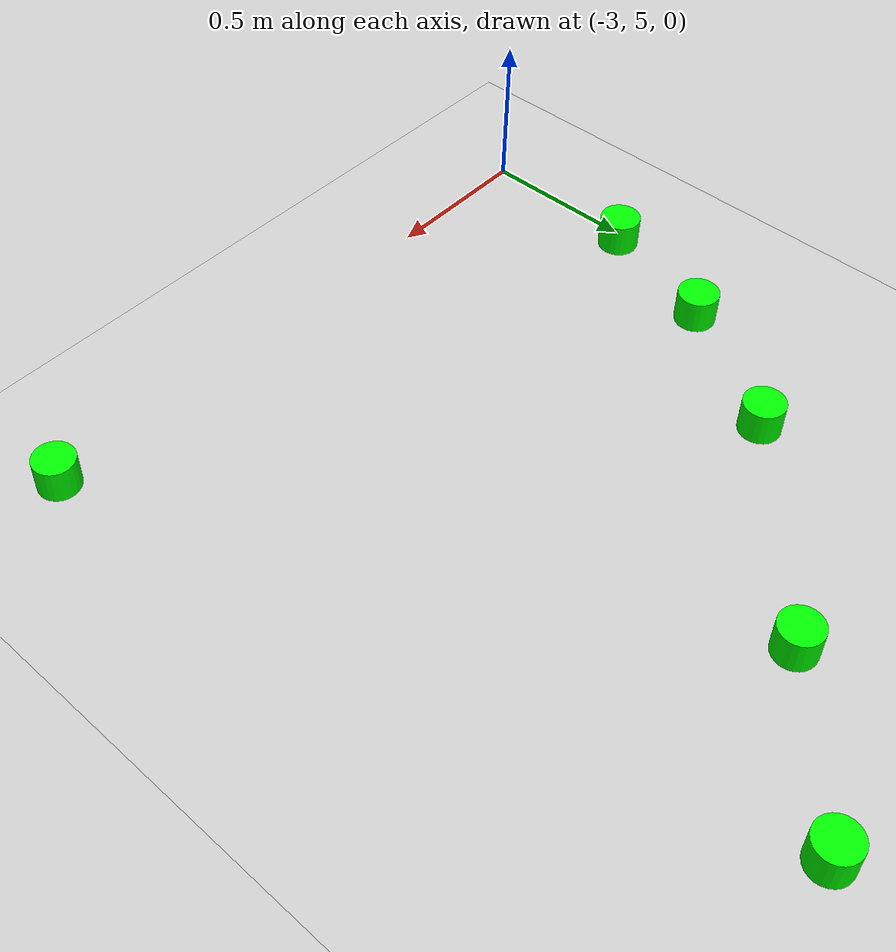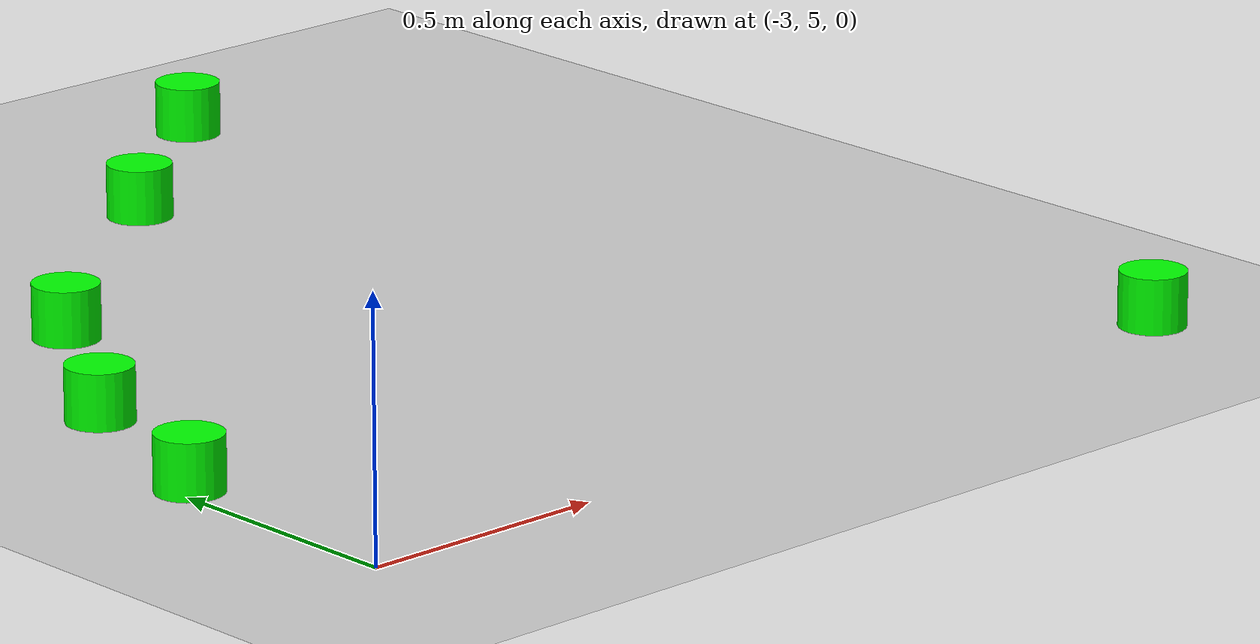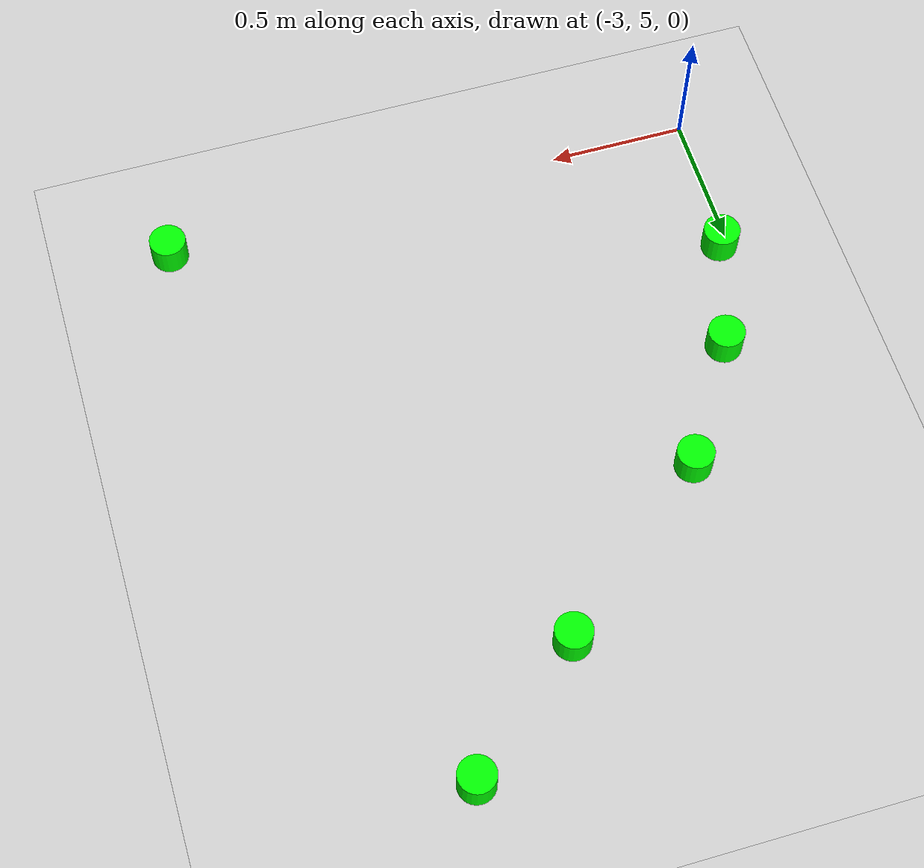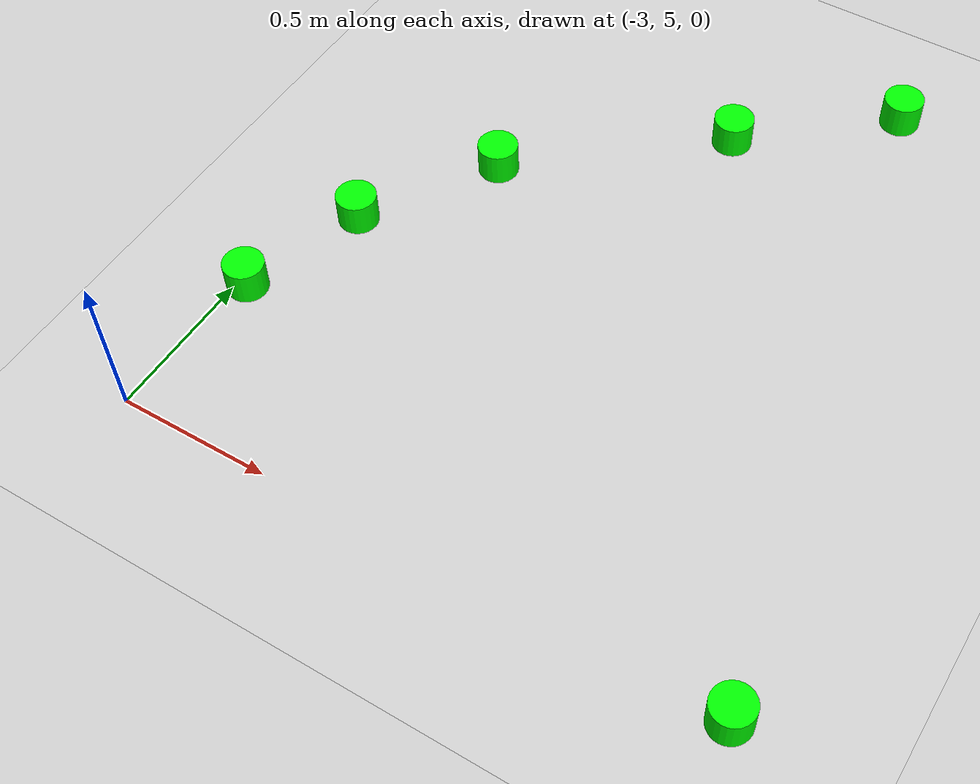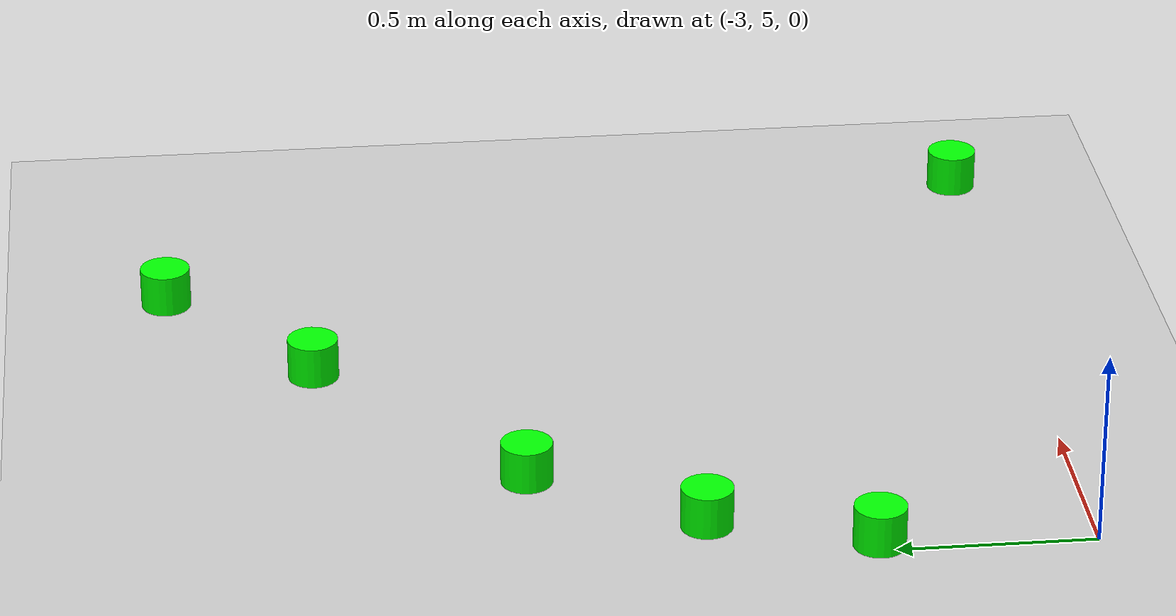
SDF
<sdf version="1.7">
 <world name="default">
  <model name="ground_plane">
   <static>1</static>
   <link name="link">
    <collision name="collision">
     <geometry><plane><normal>0 0 1</normal><size>100 100</size></plane></geometry>
     <surface>
      <contact><collide_bitmask>65535</collide_bitmask></contact>
      <friction><ode><mu>100</mu><mu2>50</mu2></ode></friction>
     </surface>
    </collision>
    <visual name="visual">
     <cast_shadows>0</cast_shadows>
     <geometry><plane><normal>0 0 1</normal><size>100 100</size></plane></geometry>
     <material>
      <script><uri>file://media/materials/scripts/gazebo.material</uri><name>Gazebo/Grey</name></script>
     </material>
    </visual>
   </link>
  </model>
  <model name="latinha_verde_clone_4">
   <link name="link">
    <inertial>
     <mass>1</mass>
     <inertia><ixx>0.145833</ixx><ixy>0</ixy><ixz>0</ixz><iyy>0.145833</iyy><iyz>0</iyz><izz>0.125</izz></inertia>
    </inertial>
    <visual name="visual">
     <geometry><cylinder><radius>0.066</radius><length>0.114</length></cylinder></geometry>
     <material>
      <script><name>Gazebo/Gray</name><uri>file://media/materials/scripts/gazebo.material</uri></script>
      <shader type="pixel"><normal_map>__default__</normal_map></shader>
      <ambient>0 1 0 1</ambient>
      <diffuse>0 1 0 1</diffuse>
      <specular>0.1 0.1 0.1 1</specular>
      <emissive>0 0 0 1</emissive>
     </material>
    </visual>
    <collision name="collision">
     <geometry><cylinder><radius>0.05</radius><length>0.1</length></cylinder></geometry>
     <surface>
      <friction>
       <ode><mu>1</mu><mu2>1</mu2><fdir1>0 0 0</fdir1><slip1>0</slip1><slip2>0</slip2></ode>
       <torsional>
        <coefficient>1</coefficient>
        <patch_radius>0</patch_radius>
        <surface_radius>0</surface_radius>
        <use_patch_radius>1</use_patch_radius>
        <ode><slip>0</slip></ode>
       </torsional>
      </friction>
      <bounce><restitution_coefficient>0</restitution_coefficient><threshold>1e+06</threshold></bounce>
      <contact>
       <collide_without_contact>0</collide_without_contact>
       <collide_without_contact_bitmask>1</collide_without_contact_bitmask>
       <collide_bitmask>1</collide_bitmask>
       <ode>
        <soft_cfm>0</soft_cfm>
        <soft_erp>0.2</soft_erp>
        <kp>1e+13</kp>
        <kd>1</kd>
        <max_vel>0.01</max_vel>
        <min_depth>0</min_depth>
       </ode>
       <bullet>
        <split_impulse>1</split_impulse>
        <split_impulse_penetration_threshold>-0.01</split_impulse_penetration_threshold>
        <soft_cfm>0</soft_cfm>
        <soft_erp>0.2</soft_erp>
        <kp>1e+13</kp>
        <kd>1</kd>
       </bullet>
      </contact>
     </surface>
    </collision>
   </link>
   <static>0</static>
   <pose>-1.02625 5.01775 0.049991 0 -0 0.000149</pose>
  </model>
  <model name="latinha_verde_clone_8_clone_2_clone_2_clone_16">
   <link name="link">
    <inertial>
     <mass>1</mass>
     <inertia><ixx>0.145833</ixx><ixy>0</ixy><ixz>0</ixz><iyy>0.145833</iyy><iyz>0</iyz><izz>0.125</izz></inertia>
    </inertial>
    <visual name="visual">
     <geometry><cylinder><radius>0.066</radius><length>0.114</length></cylinder></geometry>
     <material>
      <script><name>Gazebo/Gray</name><uri>file://media/materials/scripts/gazebo.material</uri></script>
      <shader type="pixel"><normal_map>__default__</normal_map></shader>
      <ambient>0 1 0 1</ambient>
      <diffuse>0 1 0 1</diffuse>
      <specular>0.1 0.1 0.1 1</specular>
      <emissive>0 0 0 1</emissive>
     </material>
    </visual>
    <collision name="collision">
     <geometry><cylinder><radius>0.05</radius><length>0.1</length></cylinder></geometry>
     <surface>
      <friction>
       <ode><mu>1</mu><mu2>1</mu2><fdir1>0 0 0</fdir1><slip1>0</slip1><slip2>0</slip2></ode>
       <torsional>
        <coefficient>1</coefficient>
        <patch_radius>0</patch_radius>
        <surface_radius>0</surface_radius>
        <use_patch_radius>1</use_patch_radius>
        <ode><slip>0</slip></ode>
       </torsional>
      </friction>
      <bounce><restitution_coefficient>0</restitution_coefficient><threshold>1e+06</threshold></bounce>
      <contact>
       <collide_without_contact>0</collide_without_contact>
       <collide_without_contact_bitmask>1</collide_without_contact_bitmask>
       <collide_bitmask>1</collide_bitmask>
       <ode>
        <soft_cfm>0</soft_cfm>
        <soft_erp>0.2</soft_erp>
        <kp>1e+13</kp>
        <kd>1</kd>
        <max_vel>0.01</max_vel>
        <min_depth>0</min_depth>
       </ode>
       <bullet>
        <split_impulse>1</split_impulse>
        <split_impulse_penetration_threshold>-0.01</split_impulse_penetration_threshold>
        <soft_cfm>0</soft_cfm>
        <soft_erp>0.2</soft_erp>
        <kp>1e+13</kp>
        <kd>1</kd>
       </bullet>
      </contact>
     </surface>
    </collision>
   </link>
   <static>0</static>
   <pose>-1.52834 7.23863 0.05 0 -0 0.000118</pose>
  </model>
  <model name="latinha_verde_clone_8_clone_2_clone_2_clone_17">
   <link name="link">
    <inertial>
     <mass>1</mass>
     <inertia><ixx>0.145833</ixx><ixy>0</ixy><ixz>0</ixz><iyy>0.145833</iyy><iyz>0</iyz><izz>0.125</izz></inertia>
    </inertial>
    <visual name="visual">
     <geometry><cylinder><radius>0.066</radius><length>0.114</length></cylinder></geometry>
     <material>
      <script><name>Gazebo/Gray</name><uri>file://media/materials/scripts/gazebo.material</uri></script>
      <shader type="pixel"><normal_map>__default__</normal_map></shader>
      <ambient>0 1 0 1</ambient>
      <diffuse>0 1 0 1</diffuse>
      <specular>0.1 0.1 0.1 1</specular>
      <emissive>0 0 0 1</emissive>
     </material>
    </visual>
    <collision name="collision">
     <geometry><cylinder><radius>0.05</radius><length>0.1</length></cylinder></geometry>
     <surface>
      <friction>
       <ode><mu>1</mu><mu2>1</mu2><fdir1>0 0 0</fdir1><slip1>0</slip1><slip2>0</slip2></ode>
       <torsional>
        <coefficient>1</coefficient>
        <patch_radius>0</patch_radius>
        <surface_radius>0</surface_radius>
        <use_patch_radius>1</use_patch_radius>
        <ode><slip>0</slip></ode>
       </torsional>
      </friction>
      <bounce><restitution_coefficient>0</restitution_coefficient><threshold>1e+06</threshold></bounce>
      <contact>
       <collide_without_contact>0</collide_without_contact>
       <collide_without_contact_bitmask>1</collide_without_contact_bitmask>
       <collide_bitmask>1</collide_bitmask>
       <ode>
        <soft_cfm>0</soft_cfm>
        <soft_erp>0.2</soft_erp>
        <kp>1e+13</kp>
        <kd>1</kd>
        <max_vel>0.01</max_vel>
        <min_depth>0</min_depth>
       </ode>
       <bullet>
        <split_impulse>1</split_impulse>
        <split_impulse_penetration_threshold>-0.01</split_impulse_penetration_threshold>
        <soft_cfm>0</soft_cfm>
        <soft_erp>0.2</soft_erp>
        <kp>1e+13</kp>
        <kd>1</kd>
       </bullet>
      </contact>
     </surface>
    </collision>
   </link>
   <static>0</static>
   <pose>-1.96926 6.86403 0.05 0 -0 0.000118</pose>
  </model>
  <model name="latinha_verde_clone_8_clone_2_clone_2_clone_18">
   <link name="link">
    <inertial>
     <mass>1</mass>
     <inertia><ixx>0.145833</ixx><ixy>0</ixy><ixz>0</ixz><iyy>0.145833</iyy><iyz>0</iyz><izz>0.125</izz></inertia>
    </inertial>
    <visual name="visual">
     <geometry><cylinder><radius>0.066</radius><length>0.114</length></cylinder></geometry>
     <material>
      <script><name>Gazebo/Gray</name><uri>file://media/materials/scripts/gazebo.material</uri></script>
      <shader type="pixel"><normal_map>__default__</normal_map></shader>
      <ambient>0 1 0 1</ambient>
      <diffuse>0 1 0 1</diffuse>
      <specular>0.1 0.1 0.1 1</specular>
      <emissive>0 0 0 1</emissive>
     </material>
    </visual>
    <collision name="collision">
     <geometry><cylinder><radius>0.05</radius><length>0.1</length></cylinder></geometry>
     <surface>
      <friction>
       <ode><mu>1</mu><mu2>1</mu2><fdir1>0 0 0</fdir1><slip1>0</slip1><slip2>0</slip2></ode>
       <torsional>
        <coefficient>1</coefficient>
        <patch_radius>0</patch_radius>
        <surface_radius>0</surface_radius>
        <use_patch_radius>1</use_patch_radius>
        <ode><slip>0</slip></ode>
       </torsional>
      </friction>
      <bounce><restitution_coefficient>0</restitution_coefficient><threshold>1e+06</threshold></bounce>
      <contact>
       <collide_without_contact>0</collide_without_contact>
       <collide_without_contact_bitmask>1</collide_without_contact_bitmask>
       <collide_bitmask>1</collide_bitmask>
       <ode>
        <soft_cfm>0</soft_cfm>
        <soft_erp>0.2</soft_erp>
        <kp>1e+13</kp>
        <kd>1</kd>
        <max_vel>0.01</max_vel>
        <min_depth>0</min_depth>
       </ode>
       <bullet>
        <split_impulse>1</split_impulse>
        <split_impulse_penetration_threshold>-0.01</split_impulse_penetration_threshold>
        <soft_cfm>0</soft_cfm>
        <soft_erp>0.2</soft_erp>
        <kp>1e+13</kp>
        <kd>1</kd>
       </bullet>
      </contact>
     </surface>
    </collision>
   </link>
   <static>0</static>
   <pose>-2.56989 6.36008 0.05 0 -0 0.000118</pose>
  </model>
  <model name="latinha_verde_clone_8_clone_2_clone_2_clone_19">
   <link name="link">
    <inertial>
     <mass>1</mass>
     <inertia><ixx>0.145833</ixx><ixy>0</ixy><ixz>0</ixz><iyy>0.145833</iyy><iyz>0</iyz><izz>0.125</izz></inertia>
    </inertial>
    <visual name="visual">
     <geometry><cylinder><radius>0.066</radius><length>0.114</length></cylinder></geometry>
     <material>
      <script><name>Gazebo/Gray</name><uri>file://media/materials/scripts/gazebo.material</uri></script>
      <shader type="pixel"><normal_map>__default__</normal_map></shader>
      <ambient>0 1 0 1</ambient>
      <diffuse>0 1 0 1</diffuse>
      <specular>0.1 0.1 0.1 1</specular>
      <emissive>0 0 0 1</emissive>
     </material>
    </visual>
    <collision name="collision">
     <geometry><cylinder><radius>0.05</radius><length>0.1</length></cylinder></geometry>
     <surface>
      <friction>
       <ode><mu>1</mu><mu2>1</mu2><fdir1>0 0 0</fdir1><slip1>0</slip1><slip2>0</slip2></ode>
       <torsional>
        <coefficient>1</coefficient>
        <patch_radius>0</patch_radius>
        <surface_radius>0</surface_radius>
        <use_patch_radius>1</use_patch_radius>
        <ode><slip>0</slip></ode>
       </torsional>
      </friction>
      <bounce><restitution_coefficient>0</restitution_coefficient><threshold>1e+06</threshold></bounce>
      <contact>
       <collide_without_contact>0</collide_without_contact>
       <collide_without_contact_bitmask>1</collide_without_contact_bitmask>
       <collide_bitmask>1</collide_bitmask>
       <ode>
        <soft_cfm>0</soft_cfm>
        <soft_erp>0.2</soft_erp>
        <kp>1e+13</kp>
        <kd>1</kd>
        <max_vel>0.01</max_vel>
        <min_depth>0</min_depth>
       </ode>
       <bullet>
        <split_impulse>1</split_impulse>
        <split_impulse_penetration_threshold>-0.01</split_impulse_penetration_threshold>
        <soft_cfm>0</soft_cfm>
        <soft_erp>0.2</soft_erp>
        <kp>1e+13</kp>
        <kd>1</kd>
       </bullet>
      </contact>
     </surface>
    </collision>
   </link>
   <static>0</static>
   <pose>-2.83467 5.94119 0.05 0 -0 0.000118</pose>
  </model>
  <model name="latinha_verde_clone_8_clone_2_clone_2_clone_20">
   <link name="link">
    <inertial>
     <mass>1</mass>
     <inertia><ixx>0.145833</ixx><ixy>0</ixy><ixz>0</ixz><iyy>0.145833</iyy><iyz>0</iyz><izz>0.125</izz></inertia>
    </inertial>
    <visual name="visual">
     <geometry><cylinder><radius>0.066</radius><length>0.114</length></cylinder></geometry>
     <material>
      <script><name>Gazebo/Gray</name><uri>file://media/materials/scripts/gazebo.material</uri></script>
      <shader type="pixel"><normal_map>__default__</normal_map></shader>
      <ambient>0 1 0 1</ambient>
      <diffuse>0 1 0 1</diffuse>
      <specular>0.1 0.1 0.1 1</specular>
      <emissive>0 0 0 1</emissive>
     </material>
    </visual>
    <collision name="collision">
     <geometry><cylinder><radius>0.05</radius><length>0.1</length></cylinder></geometry>
     <surface>
      <friction>
       <ode><mu>1</mu><mu2>1</mu2><fdir1>0 0 0</fdir1><slip1>0</slip1><slip2>0</slip2></ode>
       <torsional>
        <coefficient>1</coefficient>
        <patch_radius>0</patch_radius>
        <surface_radius>0</surface_radius>
        <use_patch_radius>1</use_patch_radius>
        <ode><slip>0</slip></ode>
       </torsional>
      </friction>
      <bounce><restitution_coefficient>0</restitution_coefficient><threshold>1e+06</threshold></bounce>
      <contact>
       <collide_without_contact>0</collide_without_contact>
       <collide_without_contact_bitmask>1</collide_without_contact_bitmask>
       <collide_bitmask>1</collide_bitmask>
       <ode>
        <soft_cfm>0</soft_cfm>
        <soft_erp>0.2</soft_erp>
        <kp>1e+13</kp>
        <kd>1</kd>
        <max_vel>0.01</max_vel>
        <min_depth>0</min_depth>
       </ode>
       <bullet>
        <split_impulse>1</split_impulse>
        <split_impulse_penetration_threshold>-0.01</split_impulse_penetration_threshold>
        <soft_cfm>0</soft_cfm>
        <soft_erp>0.2</soft_erp>
        <kp>1e+13</kp>
        <kd>1</kd>
       </bullet>
      </contact>
     </surface>
    </collision>
   </link>
   <static>0</static>
   <pose>-2.96572 5.53451 0.05 0 -0 0.000118</pose>
  </model>
 </world>
</sdf>
